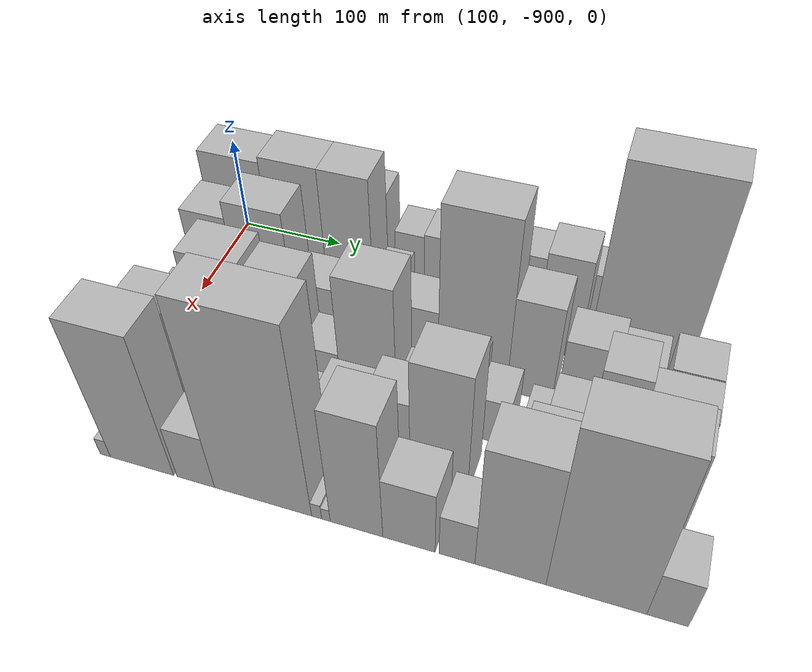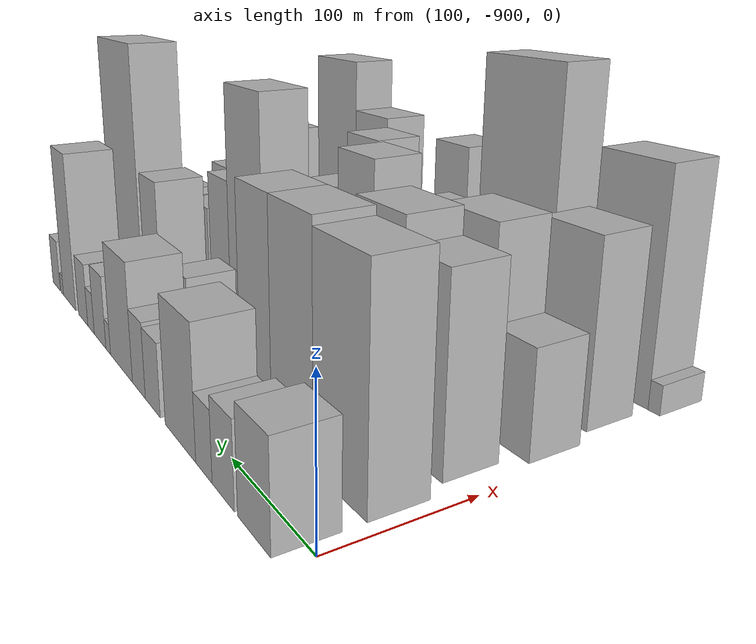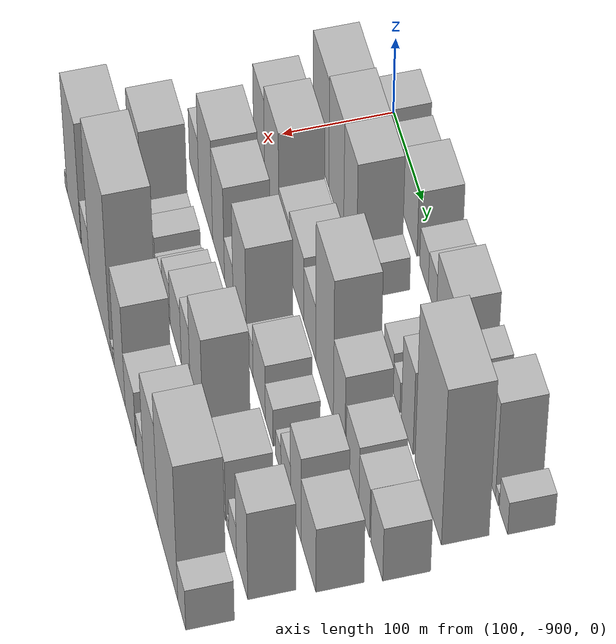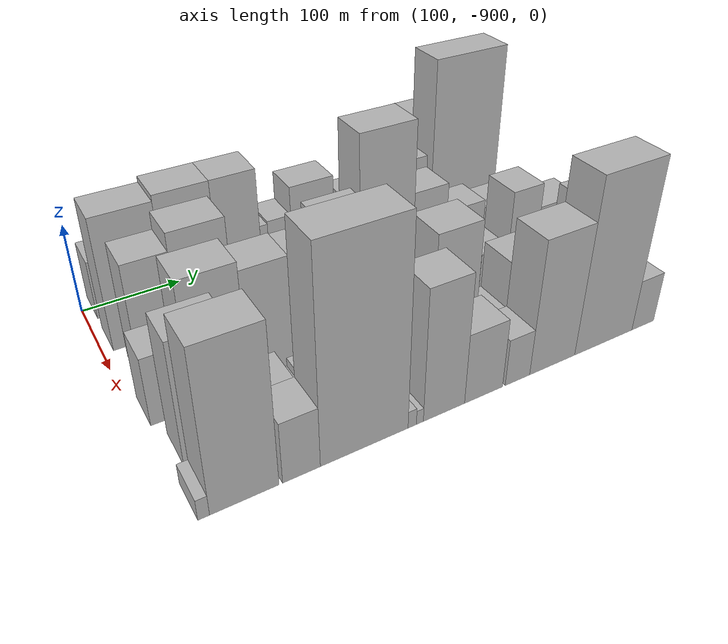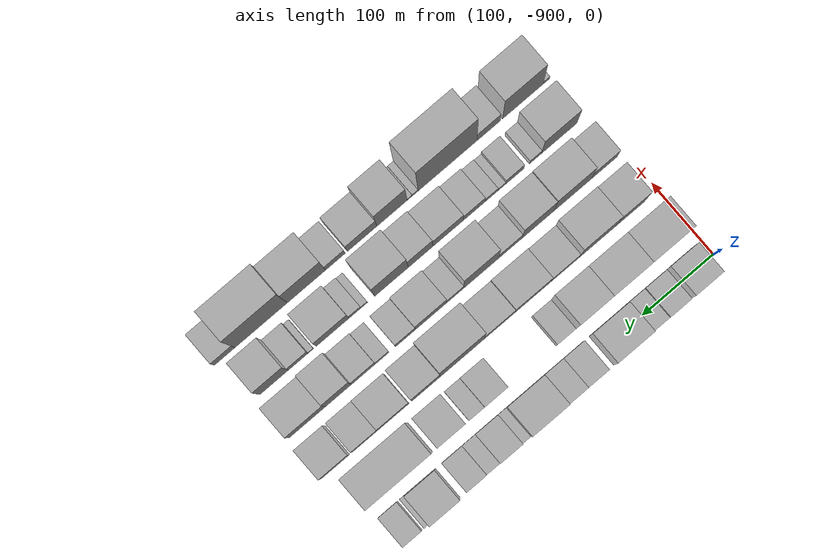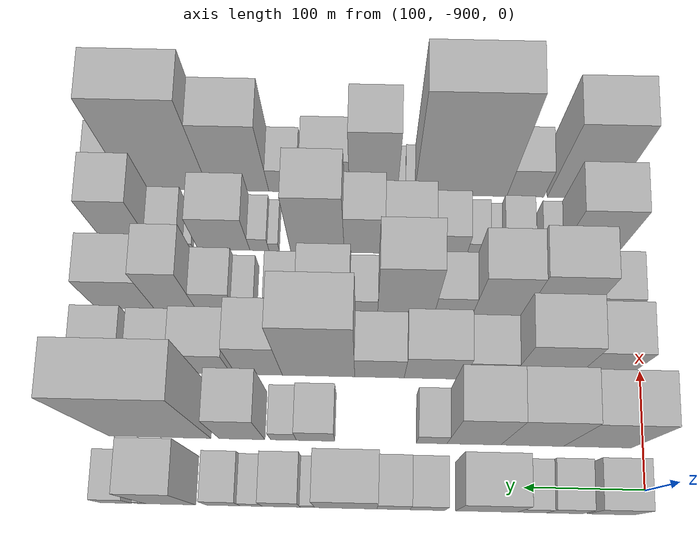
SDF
<sdf version="1.6">
 <world name="default">
  <model name="building_1">
   <static>1</static>
   <pose>100.0000 -870.7207 0 0.000000 0.000000 0.000000</pose>
   <link name="link">
    <pose>0 0 33.00 0 0 0</pose>
    <collision name="collision"><geometry><box><size>40.0000 38.5586 66.0000</size></box></geometry></collision>
    <visual name="visual">
     <cast_shadows>0</cast_shadows>
     <geometry><box><size>40.0000 38.5586 66.0000</size></box></geometry>
     <material>
      <script>
       <uri>model://HANNAS_wall/materials/scripts</uri>
       <uri>model://HANNAS_wall/materials/textures</uri>
       <name>vrc/HANNAS_wall</name>
      </script>
     </material>
    </visual>
   </link>
  </model>
  <model name="building_2">
   <static>1</static>
   <pose>100.0000 -832.6022 0 0.000000 0.000000 0.000000</pose>
   <link name="link">
    <pose>0 0 27.00 0 0 0</pose>
    <collision name="collision"><geometry><box><size>40.0000 29.6783 54.0000</size></box></geometry></collision>
    <visual name="visual">
     <cast_shadows>0</cast_shadows>
     <geometry><box><size>40.0000 29.6783 54.0000</size></box></geometry>
     <material>
      <script>
       <uri>model://HANNAS_wall/materials/scripts</uri>
       <uri>model://HANNAS_wall/materials/textures</uri>
       <name>vrc/HANNAS_wall</name>
      </script>
     </material>
    </visual>
   </link>
  </model>
  <model name="building_3">
   <static>1</static>
   <pose>100.0000 -805.7250 0 0.000000 0.000000 0.000000</pose>
   <link name="link">
    <pose>0 0 22.50 0 0 0</pose>
    <collision name="collision"><geometry><box><size>40.0000 24.0761 45.0000</size></box></geometry></collision>
    <visual name="visual">
     <cast_shadows>0</cast_shadows>
     <geometry><box><size>40.0000 24.0761 45.0000</size></box></geometry>
     <material>
      <script>
       <uri>model://HANNAS_wall/materials/scripts</uri>
       <uri>model://HANNAS_wall/materials/textures</uri>
       <name>vrc/HANNAS_wall</name>
      </script>
     </material>
    </visual>
   </link>
  </model>
  <model name="building_4">
   <static>1</static>
   <pose>100.0000 -768.3808 0 0.000000 0.000000 0.000000</pose>
   <link name="link">
    <pose>0 0 43.50 0 0 0</pose>
    <collision name="collision"><geometry><box><size>40.0000 50.6123 87.0000</size></box></geometry></collision>
    <visual name="visual">
     <cast_shadows>0</cast_shadows>
     <geometry><box><size>40.0000 50.6123 87.0000</size></box></geometry>
     <material>
      <script>
       <uri>model://HANNAS_wall/materials/scripts</uri>
       <uri>model://HANNAS_wall/materials/textures</uri>
       <name>vrc/HANNAS_wall</name>
      </script>
     </material>
    </visual>
   </link>
  </model>
  <model name="building_5">
   <static>1</static>
   <pose>100.0000 -719.6450 0 0.000000 0.000000 0.000000</pose>
   <link name="link">
    <pose>0 0 25.50 0 0 0</pose>
    <collision name="collision"><geometry><box><size>40.0000 28.8593 51.0000</size></box></geometry></collision>
    <visual name="visual">
     <cast_shadows>0</cast_shadows>
     <geometry><box><size>40.0000 28.8593 51.0000</size></box></geometry>
     <material>
      <script>
       <uri>model://HANNAS_wall/materials/scripts</uri>
       <uri>model://HANNAS_wall/materials/textures</uri>
       <name>vrc/HANNAS_wall</name>
      </script>
     </material>
    </visual>
   </link>
  </model>
  <model name="building_6">
   <static>1</static>
   <pose>100.0000 -691.6827 0 0.000000 0.000000 0.000000</pose>
   <link name="link">
    <pose>0 0 27.00 0 0 0</pose>
    <collision name="collision"><geometry><box><size>40.0000 27.0654 54.0000</size></box></geometry></collision>
    <visual name="visual">
     <cast_shadows>0</cast_shadows>
     <geometry><box><size>40.0000 27.0654 54.0000</size></box></geometry>
     <material>
      <script>
       <uri>model://HANNAS_wall/materials/scripts</uri>
       <uri>model://HANNAS_wall/materials/textures</uri>
       <name>vrc/HANNAS_wall</name>
      </script>
     </material>
    </visual>
   </link>
  </model>
  <model name="building_7">
   <static>1</static>
   <pose>100.0000 -652.5568 0 0.000000 0.000000 0.000000</pose>
   <link name="link">
    <pose>0 0 43.50 0 0 0</pose>
    <collision name="collision"><geometry><box><size>40.0000 51.1863 87.0000</size></box></geometry></collision>
    <visual name="visual">
     <cast_shadows>0</cast_shadows>
     <geometry><box><size>40.0000 51.1863 87.0000</size></box></geometry>
     <material>
      <script>
       <uri>model://HANNAS_wall/materials/scripts</uri>
       <uri>model://HANNAS_wall/materials/textures</uri>
       <name>vrc/HANNAS_wall</name>
      </script>
     </material>
    </visual>
   </link>
  </model>
  <model name="building_8">
   <static>1</static>
   <pose>100.0000 -621.0756 0 0.000000 0.000000 0.000000</pose>
   <link name="link">
    <pose>0 0 12.00 0 0 0</pose>
    <collision name="collision"><geometry><box><size>40.0000 11.7761 24.0000</size></box></geometry></collision>
    <visual name="visual">
     <cast_shadows>0</cast_shadows>
     <geometry><box><size>40.0000 11.7761 24.0000</size></box></geometry>
     <material>
      <script>
       <uri>model://HANNAS_wall/materials/scripts</uri>
       <uri>model://HANNAS_wall/materials/textures</uri>
       <name>vrc/HANNAS_wall</name>
      </script>
     </material>
    </visual>
   </link>
  </model>
  <model name="building_9">
   <static>1</static>
   <pose>100.0000 -599.5443 0 0.000000 0.000000 0.000000</pose>
   <link name="link">
    <pose>0 0 28.50 0 0 0</pose>
    <collision name="collision"><geometry><box><size>40.0000 31.2865 57.0000</size></box></geometry></collision>
    <visual name="visual">
     <cast_shadows>0</cast_shadows>
     <geometry><box><size>40.0000 31.2865 57.0000</size></box></geometry>
     <material>
      <script>
       <uri>model://HANNAS_wall/materials/scripts</uri>
       <uri>model://HANNAS_wall/materials/textures</uri>
       <name>vrc/HANNAS_wall</name>
      </script>
     </material>
    </visual>
   </link>
  </model>
  <model name="building_10">
   <static>1</static>
   <pose>100.0000 -574.7126 0 0.000000 0.000000 0.000000</pose>
   <link name="link">
    <pose>0 0 16.50 0 0 0</pose>
    <collision name="collision"><geometry><box><size>40.0000 18.3769 33.0000</size></box></geometry></collision>
    <visual name="visual">
     <cast_shadows>0</cast_shadows>
     <geometry><box><size>40.0000 18.3769 33.0000</size></box></geometry>
     <material>
      <script>
       <uri>model://HANNAS_wall/materials/scripts</uri>
       <uri>model://HANNAS_wall/materials/textures</uri>
       <name>vrc/HANNAS_wall</name>
      </script>
     </material>
    </visual>
   </link>
  </model>
  <model name="building_11">
   <static>1</static>
   <pose>100.0000 -551.5898 0 0.000000 0.000000 0.000000</pose>
   <link name="link">
    <pose>0 0 25.50 0 0 0</pose>
    <collision name="collision"><geometry><box><size>40.0000 27.8686 51.0000</size></box></geometry></collision>
    <visual name="visual">
     <cast_shadows>0</cast_shadows>
     <geometry><box><size>40.0000 27.8686 51.0000</size></box></geometry>
     <material>
      <script>
       <uri>model://HANNAS_wall/materials/scripts</uri>
       <uri>model://HANNAS_wall/materials/textures</uri>
       <name>vrc/HANNAS_wall</name>
      </script>
     </material>
    </visual>
   </link>
  </model>
  <model name="building_12">
   <static>1</static>
   <pose>100.0000 -508.1606 0 0.000000 0.000000 0.000000</pose>
   <link name="link">
    <pose>0 0 66.00 0 0 0</pose>
    <collision name="collision"><geometry><box><size>40.0000 40.9898 132.0000</size></box></geometry></collision>
    <visual name="visual">
     <cast_shadows>0</cast_shadows>
     <geometry><box><size>40.0000 40.9898 132.0000</size></box></geometry>
     <material>
      <script>
       <uri>model://HANNAS_wall/materials/scripts</uri>
       <uri>model://HANNAS_wall/materials/textures</uri>
       <name>vrc/HANNAS_wall</name>
      </script>
     </material>
    </visual>
   </link>
  </model>
  <model name="building_13">
   <static>1</static>
   <pose>100.0000 -483.3093 0 0.000000 0.000000 0.000000</pose>
   <link name="link">
    <pose>0 0 9.00 0 0 0</pose>
    <collision name="collision"><geometry><box><size>40.0000 8.7128 18.0000</size></box></geometry></collision>
    <visual name="visual">
     <cast_shadows>0</cast_shadows>
     <geometry><box><size>40.0000 8.7128 18.0000</size></box></geometry>
     <material>
      <script>
       <uri>model://HANNAS_wall/materials/scripts</uri>
       <uri>model://HANNAS_wall/materials/textures</uri>
       <name>vrc/HANNAS_wall</name>
      </script>
     </material>
    </visual>
   </link>
  </model>
  <model name="building_14">
   <static>1</static>
   <pose>100.0000 -462.9301 0 0.000000 0.000000 0.000000</pose>
   <link name="link">
    <pose>0 0 22.50 0 0 0</pose>
    <collision name="collision"><geometry><box><size>40.0000 26.0456 45.0000</size></box></geometry></collision>
    <visual name="visual">
     <cast_shadows>0</cast_shadows>
     <geometry><box><size>40.0000 26.0456 45.0000</size></box></geometry>
     <material>
      <script>
       <uri>model://HANNAS_wall/materials/scripts</uri>
       <uri>model://HANNAS_wall/materials/textures</uri>
       <name>vrc/HANNAS_wall</name>
      </script>
     </material>
    </visual>
   </link>
  </model>
  <model name="building_51">
   <static>1</static>
   <pose>155.0000 -861.5962 0 0.000000 0.000000 0.000000</pose>
   <link name="link">
    <pose>0 0 72.00 0 0 0</pose>
    <collision name="collision"><geometry><box><size>40.0000 56.8075 144.0000</size></box></geometry></collision>
    <visual name="visual">
     <cast_shadows>0</cast_shadows>
     <geometry><box><size>40.0000 56.8075 144.0000</size></box></geometry>
     <material>
      <script>
       <uri>model://HANNAS_wall/materials/scripts</uri>
       <uri>model://HANNAS_wall/materials/textures</uri>
       <name>vrc/HANNAS_wall</name>
      </script>
     </material>
    </visual>
   </link>
  </model>
  <model name="building_52">
   <static>1</static>
   <pose>155.0000 -806.9790 0 0.000000 0.000000 0.000000</pose>
   <link name="link">
    <pose>0 0 75.00 0 0 0</pose>
    <collision name="collision"><geometry><box><size>40.0000 52.4269 150.0000</size></box></geometry></collision>
    <visual name="visual">
     <cast_shadows>0</cast_shadows>
     <geometry><box><size>40.0000 52.4269 150.0000</size></box></geometry>
     <material>
      <script>
       <uri>model://HANNAS_wall/materials/scripts</uri>
       <uri>model://HANNAS_wall/materials/textures</uri>
       <name>vrc/HANNAS_wall</name>
      </script>
     </material>
    </visual>
   </link>
  </model>
  <model name="building_53">
   <static>1</static>
   <pose>155.0000 -758.2334 0 0.000000 0.000000 0.000000</pose>
   <link name="link">
    <pose>0 0 75.00 0 0 0</pose>
    <collision name="collision"><geometry><box><size>40.0000 45.0644 150.0000</size></box></geometry></collision>
    <visual name="visual">
     <cast_shadows>0</cast_shadows>
     <geometry><box><size>40.0000 45.0644 150.0000</size></box></geometry>
     <material>
      <script>
       <uri>model://HANNAS_wall/materials/scripts</uri>
       <uri>model://HANNAS_wall/materials/textures</uri>
       <name>vrc/HANNAS_wall</name>
      </script>
     </material>
    </visual>
   </link>
  </model>
  <model name="building_54">
   <static>1</static>
   <pose>155.0000 -722.8340 0 0.000000 0.000000 0.000000</pose>
   <link name="link">
    <pose>0 0 22.50 0 0 0</pose>
    <collision name="collision"><geometry><box><size>40.0000 25.7344 45.0000</size></box></geometry></collision>
    <visual name="visual">
     <cast_shadows>0</cast_shadows>
     <geometry><box><size>40.0000 25.7344 45.0000</size></box></geometry>
     <material>
      <script>
       <uri>model://HANNAS_wall/materials/scripts</uri>
       <uri>model://HANNAS_wall/materials/textures</uri>
       <name>vrc/HANNAS_wall</name>
      </script>
     </material>
    </visual>
   </link>
  </model>
  <model name="building_55">
   <static>1</static>
   <pose>155.0000 -625.8600 0 0.000000 0.000000 0.000000</pose>
   <link name="link">
    <pose>0 0 27.00 0 0 0</pose>
    <collision name="collision"><geometry><box><size>40.0000 32.0712 54.0000</size></box></geometry></collision>
    <visual name="visual">
     <cast_shadows>0</cast_shadows>
     <geometry><box><size>40.0000 32.0712 54.0000</size></box></geometry>
     <material>
      <script>
       <uri>model://HANNAS_wall/materials/scripts</uri>
       <uri>model://HANNAS_wall/materials/textures</uri>
       <name>vrc/HANNAS_wall</name>
      </script>
     </material>
    </visual>
   </link>
  </model>
  <model name="building_56">
   <static>1</static>
   <pose>155.0000 -599.0404 0 0.000000 0.000000 0.000000</pose>
   <link name="link">
    <pose>0 0 21.00 0 0 0</pose>
    <collision name="collision"><geometry><box><size>40.0000 21.5678 42.0000</size></box></geometry></collision>
    <visual name="visual">
     <cast_shadows>0</cast_shadows>
     <geometry><box><size>40.0000 21.5678 42.0000</size></box></geometry>
     <material>
      <script>
       <uri>model://HANNAS_wall/materials/scripts</uri>
       <uri>model://HANNAS_wall/materials/textures</uri>
       <name>vrc/HANNAS_wall</name>
      </script>
     </material>
    </visual>
   </link>
  </model>
  <model name="building_57">
   <static>1</static>
   <pose>155.0000 -564.1133 0 0.000000 0.000000 0.000000</pose>
   <link name="link">
    <pose>0 0 57.00 0 0 0</pose>
    <collision name="collision"><geometry><box><size>40.0000 38.2865 114.0000</size></box></geometry></collision>
    <visual name="visual">
     <cast_shadows>0</cast_shadows>
     <geometry><box><size>40.0000 38.2865 114.0000</size></box></geometry>
     <material>
      <script>
       <uri>model://HANNAS_wall/materials/scripts</uri>
       <uri>model://HANNAS_wall/materials/textures</uri>
       <name>vrc/HANNAS_wall</name>
      </script>
     </material>
    </visual>
   </link>
  </model>
  <model name="building_58">
   <static>1</static>
   <pose>155.0000 -495.3267 0 0.000000 0.000000 0.000000</pose>
   <link name="link">
    <pose>0 0 108.00 0 0 0</pose>
    <collision name="collision"><geometry><box><size>40.0000 85.2867 216.0000</size></box></geometry></collision>
    <visual name="visual">
     <cast_shadows>0</cast_shadows>
     <geometry><box><size>40.0000 85.2867 216.0000</size></box></geometry>
     <material>
      <script>
       <uri>model://HANNAS_wall/materials/scripts</uri>
       <uri>model://HANNAS_wall/materials/textures</uri>
       <name>vrc/HANNAS_wall</name>
      </script>
     </material>
    </visual>
   </link>
  </model>
  <model name="building_91">
   <static>1</static>
   <pose>210.0000 -860.6637 0 0.000000 0.000000 0.000000</pose>
   <link name="link">
    <pose>0 0 63.00 0 0 0</pose>
    <collision name="collision"><geometry><box><size>40.0000 40.6727 126.0000</size></box></geometry></collision>
    <visual name="visual">
     <cast_shadows>0</cast_shadows>
     <geometry><box><size>40.0000 40.6727 126.0000</size></box></geometry>
     <material>
      <script>
       <uri>model://HANNAS_wall/materials/scripts</uri>
       <uri>model://HANNAS_wall/materials/textures</uri>
       <name>vrc/HANNAS_wall</name>
      </script>
     </material>
    </visual>
   </link>
  </model>
  <model name="building_92">
   <static>1</static>
   <pose>210.0000 -814.2765 0 0.000000 0.000000 0.000000</pose>
   <link name="link">
    <pose>0 0 72.00 0 0 0</pose>
    <collision name="collision"><geometry><box><size>40.0000 52.1016 144.0000</size></box></geometry></collision>
    <visual name="visual">
     <cast_shadows>0</cast_shadows>
     <geometry><box><size>40.0000 52.1016 144.0000</size></box></geometry>
     <material>
      <script>
       <uri>model://HANNAS_wall/materials/scripts</uri>
       <uri>model://HANNAS_wall/materials/textures</uri>
       <name>vrc/HANNAS_wall</name>
      </script>
     </material>
    </visual>
   </link>
  </model>
  <model name="building_93">
   <static>1</static>
   <pose>210.0000 -768.9714 0 0.000000 0.000000 0.000000</pose>
   <link name="link">
    <pose>0 0 36.00 0 0 0</pose>
    <collision name="collision"><geometry><box><size>40.0000 38.5085 72.0000</size></box></geometry></collision>
    <visual name="visual">
     <cast_shadows>0</cast_shadows>
     <geometry><box><size>40.0000 38.5085 72.0000</size></box></geometry>
     <material>
      <script>
       <uri>model://HANNAS_wall/materials/scripts</uri>
       <uri>model://HANNAS_wall/materials/textures</uri>
       <name>vrc/HANNAS_wall</name>
      </script>
     </material>
    </visual>
   </link>
  </model>
  <model name="building_94">
   <static>1</static>
   <pose>210.0000 -724.4365 0 0.000000 0.000000 0.000000</pose>
   <link name="link">
    <pose>0 0 43.50 0 0 0</pose>
    <collision name="collision"><geometry><box><size>40.0000 50.5613 87.0000</size></box></geometry></collision>
    <visual name="visual">
     <cast_shadows>0</cast_shadows>
     <geometry><box><size>40.0000 50.5613 87.0000</size></box></geometry>
     <material>
      <script>
       <uri>model://HANNAS_wall/materials/scripts</uri>
       <uri>model://HANNAS_wall/materials/textures</uri>
       <name>vrc/HANNAS_wall</name>
      </script>
     </material>
    </visual>
   </link>
  </model>
  <model name="building_95">
   <static>1</static>
   <pose>210.0000 -678.1524 0 0.000000 0.000000 0.000000</pose>
   <link name="link">
    <pose>0 0 37.50 0 0 0</pose>
    <collision name="collision"><geometry><box><size>40.0000 42.0069 75.0000</size></box></geometry></collision>
    <visual name="visual">
     <cast_shadows>0</cast_shadows>
     <geometry><box><size>40.0000 42.0069 75.0000</size></box></geometry>
     <material>
      <script>
       <uri>model://HANNAS_wall/materials/scripts</uri>
       <uri>model://HANNAS_wall/materials/textures</uri>
       <name>vrc/HANNAS_wall</name>
      </script>
     </material>
    </visual>
   </link>
  </model>
  <model name="building_96">
   <static>1</static>
   <pose>210.0000 -626.4359 0 0.000000 0.000000 0.000000</pose>
   <link name="link">
    <pose>0 0 94.50 0 0 0</pose>
    <collision name="collision"><geometry><box><size>40.0000 61.4261 189.0000</size></box></geometry></collision>
    <visual name="visual">
     <cast_shadows>0</cast_shadows>
     <geometry><box><size>40.0000 61.4261 189.0000</size></box></geometry>
     <material>
      <script>
       <uri>model://HANNAS_wall/materials/scripts</uri>
       <uri>model://HANNAS_wall/materials/textures</uri>
       <name>vrc/HANNAS_wall</name>
      </script>
     </material>
    </visual>
   </link>
  </model>
  <model name="building_97">
   <static>1</static>
   <pose>210.0000 -576.0106 0 0.000000 0.000000 0.000000</pose>
   <link name="link">
    <pose>0 0 55.50 0 0 0</pose>
    <collision name="collision"><geometry><box><size>40.0000 39.4246 111.0000</size></box></geometry></collision>
    <visual name="visual">
     <cast_shadows>0</cast_shadows>
     <geometry><box><size>40.0000 39.4246 111.0000</size></box></geometry>
     <material>
      <script>
       <uri>model://HANNAS_wall/materials/scripts</uri>
       <uri>model://HANNAS_wall/materials/textures</uri>
       <name>vrc/HANNAS_wall</name>
      </script>
     </material>
    </visual>
   </link>
  </model>
  <model name="building_98">
   <static>1</static>
   <pose>210.0000 -530.5555 0 0.000000 0.000000 0.000000</pose>
   <link name="link">
    <pose>0 0 39.00 0 0 0</pose>
    <collision name="collision"><geometry><box><size>40.0000 43.4855 78.0000</size></box></geometry></collision>
    <visual name="visual">
     <cast_shadows>0</cast_shadows>
     <geometry><box><size>40.0000 43.4855 78.0000</size></box></geometry>
     <material>
      <script>
       <uri>model://HANNAS_wall/materials/scripts</uri>
       <uri>model://HANNAS_wall/materials/textures</uri>
       <name>vrc/HANNAS_wall</name>
      </script>
     </material>
    </visual>
   </link>
  </model>
  <model name="building_99">
   <static>1</static>
   <pose>210.0000 -491.1985 0 0.000000 0.000000 0.000000</pose>
   <link name="link">
    <pose>0 0 34.50 0 0 0</pose>
    <collision name="collision"><geometry><box><size>40.0000 35.2285 69.0000</size></box></geometry></collision>
    <visual name="visual">
     <cast_shadows>0</cast_shadows>
     <geometry><box><size>40.0000 35.2285 69.0000</size></box></geometry>
     <material>
      <script>
       <uri>model://HANNAS_wall/materials/scripts</uri>
       <uri>model://HANNAS_wall/materials/textures</uri>
       <name>vrc/HANNAS_wall</name>
      </script>
     </material>
    </visual>
   </link>
  </model>
  <model name="building_100">
   <static>1</static>
   <pose>210.0000 -449.9048 0 0.000000 0.000000 0.000000</pose>
   <link name="link">
    <pose>0 0 37.50 0 0 0</pose>
    <collision name="collision"><geometry><box><size>40.0000 39.3588 75.0000</size></box></geometry></collision>
    <visual name="visual">
     <cast_shadows>0</cast_shadows>
     <geometry><box><size>40.0000 39.3588 75.0000</size></box></geometry>
     <material>
      <script>
       <uri>model://HANNAS_wall/materials/scripts</uri>
       <uri>model://HANNAS_wall/materials/textures</uri>
       <name>vrc/HANNAS_wall</name>
      </script>
     </material>
    </visual>
   </link>
  </model>
  <model name="building_135">
   <static>1</static>
   <pose>265.0000 -871.8737 0 0.000000 0.000000 0.000000</pose>
   <link name="link">
    <pose>0 0 36.00 0 0 0</pose>
    <collision name="collision"><geometry><box><size>40.0000 36.2526 72.0000</size></box></geometry></collision>
    <visual name="visual">
     <cast_shadows>0</cast_shadows>
     <geometry><box><size>40.0000 36.2526 72.0000</size></box></geometry>
     <material>
      <script>
       <uri>model://HANNAS_wall/materials/scripts</uri>
       <uri>model://HANNAS_wall/materials/textures</uri>
       <name>vrc/HANNAS_wall</name>
      </script>
     </material>
    </visual>
   </link>
  </model>
  <model name="building_136">
   <static>1</static>
   <pose>265.0000 -827.4728 0 0.000000 0.000000 0.000000</pose>
   <link name="link">
    <pose>0 0 67.50 0 0 0</pose>
    <collision name="collision"><geometry><box><size>40.0000 52.5491 135.0000</size></box></geometry></collision>
    <visual name="visual">
     <cast_shadows>0</cast_shadows>
     <geometry><box><size>40.0000 52.5491 135.0000</size></box></geometry>
     <material>
      <script>
       <uri>model://HANNAS_wall/materials/scripts</uri>
       <uri>model://HANNAS_wall/materials/textures</uri>
       <name>vrc/HANNAS_wall</name>
      </script>
     </material>
    </visual>
   </link>
  </model>
  <model name="building_137">
   <static>1</static>
   <pose>265.0000 -778.9539 0 0.000000 0.000000 0.000000</pose>
   <link name="link">
    <pose>0 0 63.00 0 0 0</pose>
    <collision name="collision"><geometry><box><size>40.0000 44.4888 126.0000</size></box></geometry></collision>
    <visual name="visual">
     <cast_shadows>0</cast_shadows>
     <geometry><box><size>40.0000 44.4888 126.0000</size></box></geometry>
     <material>
      <script>
       <uri>model://HANNAS_wall/materials/scripts</uri>
       <uri>model://HANNAS_wall/materials/textures</uri>
       <name>vrc/HANNAS_wall</name>
      </script>
     </material>
    </visual>
   </link>
  </model>
  <model name="building_138">
   <static>1</static>
   <pose>265.0000 -740.4256 0 0.000000 0.000000 0.000000</pose>
   <link name="link">
    <pose>0 0 30.00 0 0 0</pose>
    <collision name="collision"><geometry><box><size>40.0000 32.5677 60.0000</size></box></geometry></collision>
    <visual name="visual">
     <cast_shadows>0</cast_shadows>
     <geometry><box><size>40.0000 32.5677 60.0000</size></box></geometry>
     <material>
      <script>
       <uri>model://HANNAS_wall/materials/scripts</uri>
       <uri>model://HANNAS_wall/materials/textures</uri>
       <name>vrc/HANNAS_wall</name>
      </script>
     </material>
    </visual>
   </link>
  </model>
  <model name="building_139">
   <static>1</static>
   <pose>265.0000 -699.8447 0 0.000000 0.000000 0.000000</pose>
   <link name="link">
    <pose>0 0 73.50 0 0 0</pose>
    <collision name="collision"><geometry><box><size>40.0000 48.5942 147.0000</size></box></geometry></collision>
    <visual name="visual">
     <cast_shadows>0</cast_shadows>
     <geometry><box><size>40.0000 48.5942 147.0000</size></box></geometry>
     <material>
      <script>
       <uri>model://HANNAS_wall/materials/scripts</uri>
       <uri>model://HANNAS_wall/materials/textures</uri>
       <name>vrc/HANNAS_wall</name>
      </script>
     </material>
    </visual>
   </link>
  </model>
  <model name="building_140">
   <static>1</static>
   <pose>265.0000 -663.7538 0 0.000000 0.000000 0.000000</pose>
   <link name="link">
    <pose>0 0 22.50 0 0 0</pose>
    <collision name="collision"><geometry><box><size>40.0000 23.5876 45.0000</size></box></geometry></collision>
    <visual name="visual">
     <cast_shadows>0</cast_shadows>
     <geometry><box><size>40.0000 23.5876 45.0000</size></box></geometry>
     <material>
      <script>
       <uri>model://HANNAS_wall/materials/scripts</uri>
       <uri>model://HANNAS_wall/materials/textures</uri>
       <name>vrc/HANNAS_wall</name>
      </script>
     </material>
    </visual>
   </link>
  </model>
  <model name="building_141">
   <static>1</static>
   <pose>265.0000 -630.0580 0 0.000000 0.000000 0.000000</pose>
   <link name="link">
    <pose>0 0 37.50 0 0 0</pose>
    <collision name="collision"><geometry><box><size>40.0000 43.8041 75.0000</size></box></geometry></collision>
    <visual name="visual">
     <cast_shadows>0</cast_shadows>
     <geometry><box><size>40.0000 43.8041 75.0000</size></box></geometry>
     <material>
      <script>
       <uri>model://HANNAS_wall/materials/scripts</uri>
       <uri>model://HANNAS_wall/materials/textures</uri>
       <name>vrc/HANNAS_wall</name>
      </script>
     </material>
    </visual>
   </link>
  </model>
  <model name="building_142">
   <static>1</static>
   <pose>265.0000 -594.2960 0 0.000000 0.000000 0.000000</pose>
   <link name="link">
    <pose>0 0 25.50 0 0 0</pose>
    <collision name="collision"><geometry><box><size>40.0000 27.7198 51.0000</size></box></geometry></collision>
    <visual name="visual">
     <cast_shadows>0</cast_shadows>
     <geometry><box><size>40.0000 27.7198 51.0000</size></box></geometry>
     <material>
      <script>
       <uri>model://HANNAS_wall/materials/scripts</uri>
       <uri>model://HANNAS_wall/materials/textures</uri>
       <name>vrc/HANNAS_wall</name>
      </script>
     </material>
    </visual>
   </link>
  </model>
  <model name="building_143">
   <static>1</static>
   <pose>265.0000 -561.9780 0 0.000000 0.000000 0.000000</pose>
   <link name="link">
    <pose>0 0 18.00 0 0 0</pose>
    <collision name="collision"><geometry><box><size>40.0000 18.9161 36.0000</size></box></geometry></collision>
    <visual name="visual">
     <cast_shadows>0</cast_shadows>
     <geometry><box><size>40.0000 18.9161 36.0000</size></box></geometry>
     <material>
      <script>
       <uri>model://HANNAS_wall/materials/scripts</uri>
       <uri>model://HANNAS_wall/materials/textures</uri>
       <name>vrc/HANNAS_wall</name>
      </script>
     </material>
    </visual>
   </link>
  </model>
  <model name="building_144">
   <static>1</static>
   <pose>265.0000 -535.9691 0 0.000000 0.000000 0.000000</pose>
   <link name="link">
    <pose>0 0 28.50 0 0 0</pose>
    <collision name="collision"><geometry><box><size>40.0000 33.1018 57.0000</size></box></geometry></collision>
    <visual name="visual">
     <cast_shadows>0</cast_shadows>
     <geometry><box><size>40.0000 33.1018 57.0000</size></box></geometry>
     <material>
      <script>
       <uri>model://HANNAS_wall/materials/scripts</uri>
       <uri>model://HANNAS_wall/materials/textures</uri>
       <name>vrc/HANNAS_wall</name>
      </script>
     </material>
    </visual>
   </link>
  </model>
  <model name="building_145">
   <static>1</static>
   <pose>265.0000 -501.2893 0 0.000000 0.000000 0.000000</pose>
   <link name="link">
    <pose>0 0 58.50 0 0 0</pose>
    <collision name="collision"><geometry><box><size>40.0000 36.2578 117.0000</size></box></geometry></collision>
    <visual name="visual">
     <cast_shadows>0</cast_shadows>
     <geometry><box><size>40.0000 36.2578 117.0000</size></box></geometry>
     <material>
      <script>
       <uri>model://HANNAS_wall/materials/scripts</uri>
       <uri>model://HANNAS_wall/materials/textures</uri>
       <name>vrc/HANNAS_wall</name>
      </script>
     </material>
    </visual>
   </link>
  </model>
  <model name="building_146">
   <static>1</static>
   <pose>265.0000 -457.9065 0 0.000000 0.000000 0.000000</pose>
   <link name="link">
    <pose>0 0 45.00 0 0 0</pose>
    <collision name="collision"><geometry><box><size>40.0000 50.5078 90.0000</size></box></geometry></collision>
    <visual name="visual">
     <cast_shadows>0</cast_shadows>
     <geometry><box><size>40.0000 50.5078 90.0000</size></box></geometry>
     <material>
      <script>
       <uri>model://HANNAS_wall/materials/scripts</uri>
       <uri>model://HANNAS_wall/materials/textures</uri>
       <name>vrc/HANNAS_wall</name>
      </script>
     </material>
    </visual>
   </link>
  </model>
  <model name="building_184">
   <static>1</static>
   <pose>320.0000 -856.1617 0 0.000000 0.000000 0.000000</pose>
   <link name="link">
    <pose>0 0 63.00 0 0 0</pose>
    <collision name="collision"><geometry><box><size>40.0000 49.6766 126.0000</size></box></geometry></collision>
    <visual name="visual">
     <cast_shadows>0</cast_shadows>
     <geometry><box><size>40.0000 49.6766 126.0000</size></box></geometry>
     <material>
      <script>
       <uri>model://HANNAS_wall/materials/scripts</uri>
       <uri>model://HANNAS_wall/materials/textures</uri>
       <name>vrc/HANNAS_wall</name>
      </script>
     </material>
    </visual>
   </link>
  </model>
  <model name="building_185">
   <static>1</static>
   <pose>320.0000 -822.9869 0 0.000000 0.000000 0.000000</pose>
   <link name="link">
    <pose>0 0 16.50 0 0 0</pose>
    <collision name="collision"><geometry><box><size>40.0000 16.6729 33.0000</size></box></geometry></collision>
    <visual name="visual">
     <cast_shadows>0</cast_shadows>
     <geometry><box><size>40.0000 16.6729 33.0000</size></box></geometry>
     <material>
      <script>
       <uri>model://HANNAS_wall/materials/scripts</uri>
       <uri>model://HANNAS_wall/materials/textures</uri>
       <name>vrc/HANNAS_wall</name>
      </script>
     </material>
    </visual>
   </link>
  </model>
  <model name="building_186">
   <static>1</static>
   <pose>320.0000 -793.8683 0 0.000000 0.000000 0.000000</pose>
   <link name="link">
    <pose>0 0 22.50 0 0 0</pose>
    <collision name="collision"><geometry><box><size>40.0000 25.5644 45.0000</size></box></geometry></collision>
    <visual name="visual">
     <cast_shadows>0</cast_shadows>
     <geometry><box><size>40.0000 25.5644 45.0000</size></box></geometry>
     <material>
      <script>
       <uri>model://HANNAS_wall/materials/scripts</uri>
       <uri>model://HANNAS_wall/materials/textures</uri>
       <name>vrc/HANNAS_wall</name>
      </script>
     </material>
    </visual>
   </link>
  </model>
  <model name="building_187">
   <static>1</static>
   <pose>320.0000 -775.7563 0 0.000000 0.000000 0.000000</pose>
   <link name="link">
    <pose>0 0 12.00 0 0 0</pose>
    <collision name="collision"><geometry><box><size>40.0000 10.6596 24.0000</size></box></geometry></collision>
    <visual name="visual">
     <cast_shadows>0</cast_shadows>
     <geometry><box><size>40.0000 10.6596 24.0000</size></box></geometry>
     <material>
      <script>
       <uri>model://HANNAS_wall/materials/scripts</uri>
       <uri>model://HANNAS_wall/materials/textures</uri>
       <name>vrc/HANNAS_wall</name>
      </script>
     </material>
    </visual>
   </link>
  </model>
  <model name="building_188">
   <static>1</static>
   <pose>320.0000 -761.4228 0 0.000000 0.000000 0.000000</pose>
   <link name="link">
    <pose>0 0 16.50 0 0 0</pose>
    <collision name="collision"><geometry><box><size>40.0000 18.0075 33.0000</size></box></geometry></collision>
    <visual name="visual">
     <cast_shadows>0</cast_shadows>
     <geometry><box><size>40.0000 18.0075 33.0000</size></box></geometry>
     <material>
      <script>
       <uri>model://HANNAS_wall/materials/scripts</uri>
       <uri>model://HANNAS_wall/materials/textures</uri>
       <name>vrc/HANNAS_wall</name>
      </script>
     </material>
    </visual>
   </link>
  </model>
  <model name="building_189">
   <static>1</static>
   <pose>320.0000 -737.3445 0 0.000000 0.000000 0.000000</pose>
   <link name="link">
    <pose>0 0 27.00 0 0 0</pose>
    <collision name="collision"><geometry><box><size>40.0000 30.1490 54.0000</size></box></geometry></collision>
    <visual name="visual">
     <cast_shadows>0</cast_shadows>
     <geometry><box><size>40.0000 30.1490 54.0000</size></box></geometry>
     <material>
      <script>
       <uri>model://HANNAS_wall/materials/scripts</uri>
       <uri>model://HANNAS_wall/materials/textures</uri>
       <name>vrc/HANNAS_wall</name>
      </script>
     </material>
    </visual>
   </link>
  </model>
  <model name="building_190">
   <static>1</static>
   <pose>320.0000 -701.0041 0 0.000000 0.000000 0.000000</pose>
   <link name="link">
    <pose>0 0 37.50 0 0 0</pose>
    <collision name="collision"><geometry><box><size>40.0000 42.5319 75.0000</size></box></geometry></collision>
    <visual name="visual">
     <cast_shadows>0</cast_shadows>
     <geometry><box><size>40.0000 42.5319 75.0000</size></box></geometry>
     <material>
      <script>
       <uri>model://HANNAS_wall/materials/scripts</uri>
       <uri>model://HANNAS_wall/materials/textures</uri>
       <name>vrc/HANNAS_wall</name>
      </script>
     </material>
    </visual>
   </link>
  </model>
  <model name="building_191">
   <static>1</static>
   <pose>320.0000 -662.5491 0 0.000000 0.000000 0.000000</pose>
   <link name="link">
    <pose>0 0 46.50 0 0 0</pose>
    <collision name="collision"><geometry><box><size>40.0000 34.3782 93.0000</size></box></geometry></collision>
    <visual name="visual">
     <cast_shadows>0</cast_shadows>
     <geometry><box><size>40.0000 34.3782 93.0000</size></box></geometry>
     <material>
      <script>
       <uri>model://HANNAS_wall/materials/scripts</uri>
       <uri>model://HANNAS_wall/materials/textures</uri>
       <name>vrc/HANNAS_wall</name>
      </script>
     </material>
    </visual>
   </link>
  </model>
  <model name="building_192">
   <static>1</static>
   <pose>320.0000 -621.9251 0 0.000000 0.000000 0.000000</pose>
   <link name="link">
    <pose>0 0 70.50 0 0 0</pose>
    <collision name="collision"><geometry><box><size>40.0000 46.8699 141.0000</size></box></geometry></collision>
    <visual name="visual">
     <cast_shadows>0</cast_shadows>
     <geometry><box><size>40.0000 46.8699 141.0000</size></box></geometry>
     <material>
      <script>
       <uri>model://HANNAS_wall/materials/scripts</uri>
       <uri>model://HANNAS_wall/materials/textures</uri>
       <name>vrc/HANNAS_wall</name>
      </script>
     </material>
    </visual>
   </link>
  </model>
  <model name="building_193">
   <static>1</static>
   <pose>320.0000 -583.9608 0 0.000000 0.000000 0.000000</pose>
   <link name="link">
    <pose>0 0 10.50 0 0 0</pose>
    <collision name="collision"><geometry><box><size>40.0000 9.0586 21.0000</size></box></geometry></collision>
    <visual name="visual">
     <cast_shadows>0</cast_shadows>
     <geometry><box><size>40.0000 9.0586 21.0000</size></box></geometry>
     <material>
      <script>
       <uri>model://HANNAS_wall/materials/scripts</uri>
       <uri>model://HANNAS_wall/materials/textures</uri>
       <name>vrc/HANNAS_wall</name>
      </script>
     </material>
    </visual>
   </link>
  </model>
  <model name="building_194">
   <static>1</static>
   <pose>320.0000 -571.0979 0 0.000000 0.000000 0.000000</pose>
   <link name="link">
    <pose>0 0 16.50 0 0 0</pose>
    <collision name="collision"><geometry><box><size>40.0000 16.6671 33.0000</size></box></geometry></collision>
    <visual name="visual">
     <cast_shadows>0</cast_shadows>
     <geometry><box><size>40.0000 16.6671 33.0000</size></box></geometry>
     <material>
      <script>
       <uri>model://HANNAS_wall/materials/scripts</uri>
       <uri>model://HANNAS_wall/materials/textures</uri>
       <name>vrc/HANNAS_wall</name>
      </script>
     </material>
    </visual>
   </link>
  </model>
  <model name="building_195">
   <static>1</static>
   <pose>320.0000 -540.0018 0 0.000000 0.000000 0.000000</pose>
   <link name="link">
    <pose>0 0 42.00 0 0 0</pose>
    <collision name="collision"><geometry><box><size>40.0000 45.5252 84.0000</size></box></geometry></collision>
    <visual name="visual">
     <cast_shadows>0</cast_shadows>
     <geometry><box><size>40.0000 45.5252 84.0000</size></box></geometry>
     <material>
      <script>
       <uri>model://HANNAS_wall/materials/scripts</uri>
       <uri>model://HANNAS_wall/materials/textures</uri>
       <name>vrc/HANNAS_wall</name>
      </script>
     </material>
    </visual>
   </link>
  </model>
  <model name="building_196">
   <static>1</static>
   <pose>320.0000 -509.5306 0 0.000000 0.000000 0.000000</pose>
   <link name="link">
    <pose>0 0 7.50 0 0 0</pose>
    <collision name="collision"><geometry><box><size>40.0000 7.4171 15.0000</size></box></geometry></collision>
    <visual name="visual">
     <cast_shadows>0</cast_shadows>
     <geometry><box><size>40.0000 7.4171 15.0000</size></box></geometry>
     <material>
      <script>
       <uri>model://HANNAS_wall/materials/scripts</uri>
       <uri>model://HANNAS_wall/materials/textures</uri>
       <name>vrc/HANNAS_wall</name>
      </script>
     </material>
    </visual>
   </link>
  </model>
  <model name="building_197">
   <static>1</static>
   <pose>320.0000 -492.1243 0 0.000000 0.000000 0.000000</pose>
   <link name="link">
    <pose>0 0 24.00 0 0 0</pose>
    <collision name="collision"><geometry><box><size>40.0000 27.3955 48.0000</size></box></geometry></collision>
    <visual name="visual">
     <cast_shadows>0</cast_shadows>
     <geometry><box><size>40.0000 27.3955 48.0000</size></box></geometry>
     <material>
      <script>
       <uri>model://HANNAS_wall/materials/scripts</uri>
       <uri>model://HANNAS_wall/materials/textures</uri>
       <name>vrc/HANNAS_wall</name>
      </script>
     </material>
    </visual>
   </link>
  </model>
  <model name="building_198">
   <static>1</static>
   <pose>320.0000 -458.5607 0 0.000000 0.000000 0.000000</pose>
   <link name="link">
    <pose>0 0 61.50 0 0 0</pose>
    <collision name="collision"><geometry><box><size>40.0000 39.7318 123.0000</size></box></geometry></collision>
    <visual name="visual">
     <cast_shadows>0</cast_shadows>
     <geometry><box><size>40.0000 39.7318 123.0000</size></box></geometry>
     <material>
      <script>
       <uri>model://HANNAS_wall/materials/scripts</uri>
       <uri>model://HANNAS_wall/materials/textures</uri>
       <name>vrc/HANNAS_wall</name>
      </script>
     </material>
    </visual>
   </link>
  </model>
  <model name="building_235">
   <static>1</static>
   <pose>375.0000 -885.3618 0 0.000000 0.000000 0.000000</pose>
   <link name="link">
    <pose>0 0 10.50 0 0 0</pose>
    <collision name="collision"><geometry><box><size>40.0000 9.2764 21.0000</size></box></geometry></collision>
    <visual name="visual">
     <cast_shadows>0</cast_shadows>
     <geometry><box><size>40.0000 9.2764 21.0000</size></box></geometry>
     <material>
      <script>
       <uri>model://HANNAS_wall/materials/scripts</uri>
       <uri>model://HANNAS_wall/materials/textures</uri>
       <name>vrc/HANNAS_wall</name>
      </script>
     </material>
    </visual>
   </link>
  </model>
  <model name="building_236">
   <static>1</static>
   <pose>375.0000 -852.3418 0 0.000000 0.000000 0.000000</pose>
   <link name="link">
    <pose>0 0 81.00 0 0 0</pose>
    <collision name="collision"><geometry><box><size>40.0000 56.7636 162.0000</size></box></geometry></collision>
    <visual name="visual">
     <cast_shadows>0</cast_shadows>
     <geometry><box><size>40.0000 56.7636 162.0000</size></box></geometry>
     <material>
      <script>
       <uri>model://HANNAS_wall/materials/scripts</uri>
       <uri>model://HANNAS_wall/materials/textures</uri>
       <name>vrc/HANNAS_wall</name>
      </script>
     </material>
    </visual>
   </link>
  </model>
  <model name="building_237">
   <static>1</static>
   <pose>375.0000 -804.5409 0 0.000000 0.000000 0.000000</pose>
   <link name="link">
    <pose>0 0 31.50 0 0 0</pose>
    <collision name="collision"><geometry><box><size>40.0000 32.8382 63.0000</size></box></geometry></collision>
    <visual name="visual">
     <cast_shadows>0</cast_shadows>
     <geometry><box><size>40.0000 32.8382 63.0000</size></box></geometry>
     <material>
      <script>
       <uri>model://HANNAS_wall/materials/scripts</uri>
       <uri>model://HANNAS_wall/materials/textures</uri>
       <name>vrc/HANNAS_wall</name>
      </script>
     </material>
    </visual>
   </link>
  </model>
  <model name="building_238">
   <static>1</static>
   <pose>375.0000 -747.0989 0 0.000000 0.000000 0.000000</pose>
   <link name="link">
    <pose>0 0 106.50 0 0 0</pose>
    <collision name="collision"><geometry><box><size>40.0000 82.0459 213.0000</size></box></geometry></collision>
    <visual name="visual">
     <cast_shadows>0</cast_shadows>
     <geometry><box><size>40.0000 82.0459 213.0000</size></box></geometry>
     <material>
      <script>
       <uri>model://HANNAS_wall/materials/scripts</uri>
       <uri>model://HANNAS_wall/materials/textures</uri>
       <name>vrc/HANNAS_wall</name>
      </script>
     </material>
    </visual>
   </link>
  </model>
  <model name="building_239">
   <static>1</static>
   <pose>375.0000 -701.9422 0 0.000000 0.000000 0.000000</pose>
   <link name="link">
    <pose>0 0 9.00 0 0 0</pose>
    <collision name="collision"><geometry><box><size>40.0000 8.2676 18.0000</size></box></geometry></collision>
    <visual name="visual">
     <cast_shadows>0</cast_shadows>
     <geometry><box><size>40.0000 8.2676 18.0000</size></box></geometry>
     <material>
      <script>
       <uri>model://HANNAS_wall/materials/scripts</uri>
       <uri>model://HANNAS_wall/materials/textures</uri>
       <name>vrc/HANNAS_wall</name>
      </script>
     </material>
    </visual>
   </link>
  </model>
  <model name="building_240">
   <static>1</static>
   <pose>375.0000 -694.3387 0 0.000000 0.000000 0.000000</pose>
   <link name="link">
    <pose>0 0 7.50 0 0 0</pose>
    <collision name="collision"><geometry><box><size>40.0000 6.9394 15.0000</size></box></geometry></collision>
    <visual name="visual">
     <cast_shadows>0</cast_shadows>
     <geometry><box><size>40.0000 6.9394 15.0000</size></box></geometry>
     <material>
      <script>
       <uri>model://HANNAS_wall/materials/scripts</uri>
       <uri>model://HANNAS_wall/materials/textures</uri>
       <name>vrc/HANNAS_wall</name>
      </script>
     </material>
    </visual>
   </link>
  </model>
  <model name="building_241">
   <static>1</static>
   <pose>375.0000 -669.6671 0 0.000000 0.000000 0.000000</pose>
   <link name="link">
    <pose>0 0 69.00 0 0 0</pose>
    <collision name="collision"><geometry><box><size>40.0000 42.4039 138.0000</size></box></geometry></collision>
    <visual name="visual">
     <cast_shadows>0</cast_shadows>
     <geometry><box><size>40.0000 42.4039 138.0000</size></box></geometry>
     <material>
      <script>
       <uri>model://HANNAS_wall/materials/scripts</uri>
       <uri>model://HANNAS_wall/materials/textures</uri>
       <name>vrc/HANNAS_wall</name>
      </script>
     </material>
    </visual>
   </link>
  </model>
  <model name="building_242">
   <static>1</static>
   <pose>375.0000 -627.9463 0 0.000000 0.000000 0.000000</pose>
   <link name="link">
    <pose>0 0 37.50 0 0 0</pose>
    <collision name="collision"><geometry><box><size>40.0000 41.0378 75.0000</size></box></geometry></collision>
    <visual name="visual">
     <cast_shadows>0</cast_shadows>
     <geometry><box><size>40.0000 41.0378 75.0000</size></box></geometry>
     <material>
      <script>
       <uri>model://HANNAS_wall/materials/scripts</uri>
       <uri>model://HANNAS_wall/materials/textures</uri>
       <name>vrc/HANNAS_wall</name>
      </script>
     </material>
    </visual>
   </link>
  </model>
  <model name="building_243">
   <static>1</static>
   <pose>375.0000 -590.6528 0 0.000000 0.000000 0.000000</pose>
   <link name="link">
    <pose>0 0 25.50 0 0 0</pose>
    <collision name="collision"><geometry><box><size>40.0000 27.5491 51.0000</size></box></geometry></collision>
    <visual name="visual">
     <cast_shadows>0</cast_shadows>
     <geometry><box><size>40.0000 27.5491 51.0000</size></box></geometry>
     <material>
      <script>
       <uri>model://HANNAS_wall/materials/scripts</uri>
       <uri>model://HANNAS_wall/materials/textures</uri>
       <name>vrc/HANNAS_wall</name>
      </script>
     </material>
    </visual>
   </link>
  </model>
  <model name="building_244">
   <static>1</static>
   <pose>375.0000 -550.2586 0 0.000000 0.000000 0.000000</pose>
   <link name="link">
    <pose>0 0 72.00 0 0 0</pose>
    <collision name="collision"><geometry><box><size>40.0000 53.2393 144.0000</size></box></geometry></collision>
    <visual name="visual">
     <cast_shadows>0</cast_shadows>
     <geometry><box><size>40.0000 53.2393 144.0000</size></box></geometry>
     <material>
      <script>
       <uri>model://HANNAS_wall/materials/scripts</uri>
       <uri>model://HANNAS_wall/materials/textures</uri>
       <name>vrc/HANNAS_wall</name>
      </script>
     </material>
    </visual>
   </link>
  </model>
  <model name="building_245">
   <static>1</static>
   <pose>375.0000 -487.4122 0 0.000000 0.000000 0.000000</pose>
   <link name="link">
    <pose>0 0 94.50 0 0 0</pose>
    <collision name="collision"><geometry><box><size>40.0000 72.4535 189.0000</size></box></geometry></collision>
    <visual name="visual">
     <cast_shadows>0</cast_shadows>
     <geometry><box><size>40.0000 72.4535 189.0000</size></box></geometry>
     <material>
      <script>
       <uri>model://HANNAS_wall/materials/scripts</uri>
       <uri>model://HANNAS_wall/materials/textures</uri>
       <name>vrc/HANNAS_wall</name>
      </script>
     </material>
    </visual>
   </link>
  </model>
  <model name="building_246">
   <static>1</static>
   <pose>375.0000 -436.7257 0 0.000000 0.000000 0.000000</pose>
   <link name="link">
    <pose>0 0 28.50 0 0 0</pose>
    <collision name="collision"><geometry><box><size>40.0000 28.9194 57.0000</size></box></geometry></collision>
    <visual name="visual">
     <cast_shadows>0</cast_shadows>
     <geometry><box><size>40.0000 28.9194 57.0000</size></box></geometry>
     <material>
      <script>
       <uri>model://HANNAS_wall/materials/scripts</uri>
       <uri>model://HANNAS_wall/materials/textures</uri>
       <name>vrc/HANNAS_wall</name>
      </script>
     </material>
    </visual>
   </link>
  </model>
 </world>
</sdf>
